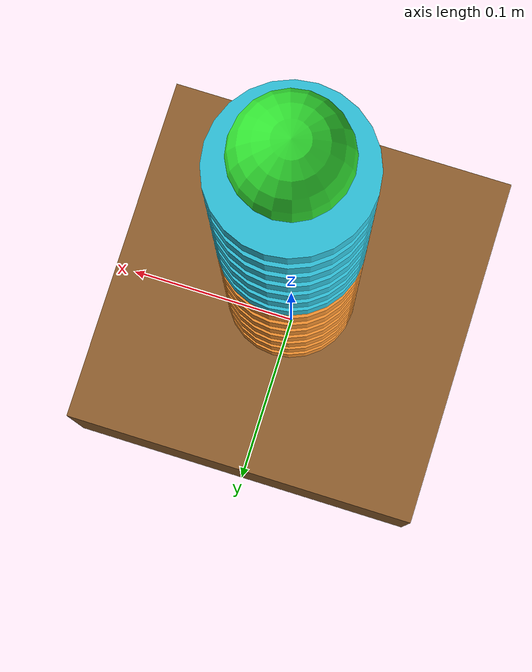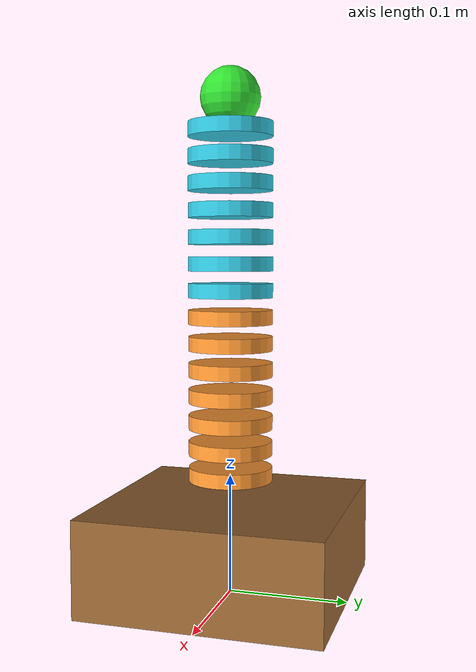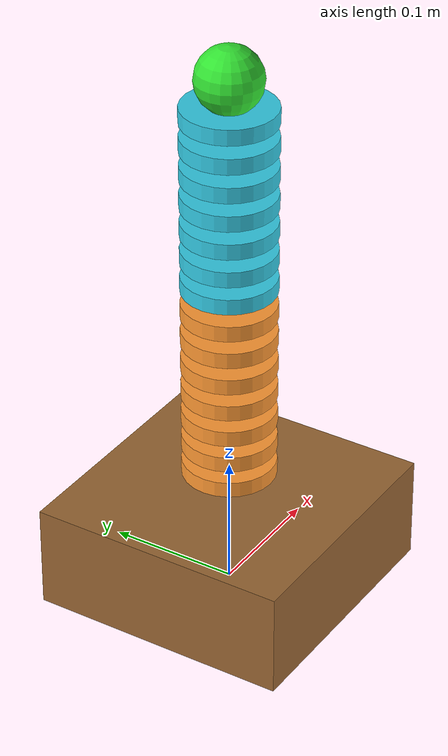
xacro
<?xml version="1.0"?>
<robot xmlns:xacro="http://www.ros.org/wiki/xacro" name="follower_serial_robot">

  <!-- Robot Dimensional Constants -->
  <xacro:property name="ground_offset" value="0.080"/>       <!-- 80mm - distance from ground to first joints -->
  <xacro:property name="H" value="0.022"/>                   <!-- 22mm - equal H distance everywhere (10% larger) -->
  <xacro:property name="revolute_limit" value="0.2094"/>     <!-- ±12° in radians -->
  <xacro:property name="disc_radius" value="0.0352"/>        <!-- 35.2mm radius = 70.4mm diameter (20% smaller) -->
  <xacro:property name="disc_height" value="0.012"/>         <!-- 12mm disc thickness -->

  <!-- Robot Segment Macro -->
  <xacro:macro name="robot_segment" params="segment_num parent_link is_actuated_x is_actuated_y mimic_segment disc_color">

    <!-- Revolute Joint X (Roll) -->
    <joint name="seg${segment_num}_joint_x" type="revolute">
      <parent link="${parent_link}"/>
      <child link="seg${segment_num}_x_link"/>
      <origin xyz="0 0 0" rpy="0 0 0"/>
      <axis xyz="1 0 0"/>
      <limit lower="-${revolute_limit}" upper="${revolute_limit}" effort="100" velocity="1.0"/>
      <xacro:if value="${is_actuated_x}">
        <dynamics damping="0.7" friction="0.0"/>
      </xacro:if>
      <xacro:unless value="${is_actuated_x}">
        <!-- Passive joint - follows control segment -->
        <mimic joint="seg${mimic_segment}_joint_x" multiplier="1.0" offset="0.0"/>
        <dynamics damping="0.1" friction="0.0"/>
      </xacro:unless>
    </joint>

    <link name="seg${segment_num}_x_link">
      <!-- No visual - invisible joint -->
      <inertial>
        <origin xyz="0 0 0" rpy="0 0 0"/>
        <mass value="0.01"/>
        <inertia ixx="0.00001" ixy="0" ixz="0" iyy="0.00001" iyz="0" izz="0.00001"/>
      </inertial>
    </link>

    <!-- Revolute Joint Y (Pitch) -->
    <joint name="seg${segment_num}_joint_y" type="revolute">
      <parent link="seg${segment_num}_x_link"/>
      <child link="seg${segment_num}_y_link"/>
      <origin xyz="0 0 0" rpy="0 0 0"/>
      <axis xyz="0 1 0"/>
      <limit lower="-${revolute_limit}" upper="${revolute_limit}" effort="100" velocity="1.0"/>
      <xacro:if value="${is_actuated_y}">
        <dynamics damping="0.7" friction="0.0"/>
      </xacro:if>
      <xacro:unless value="${is_actuated_y}">
        <!-- Passive joint - follows control segment -->
        <mimic joint="seg${mimic_segment}_joint_y" multiplier="1.0" offset="0.0"/>
        <dynamics damping="0.1" friction="0.0"/>
      </xacro:unless>
    </joint>

    <link name="seg${segment_num}_y_link">
      <!-- No visual - invisible joint -->
      <inertial>
        <origin xyz="0 0 0" rpy="0 0 0"/>
        <mass value="0.01"/>
        <inertia ixx="0.00001" ixy="0" ixz="0" iyy="0.00001" iyz="0" izz="0.00001"/>
      </inertial>
    </link>

    <!-- Fixed H distance joint -->
    <joint name="seg${segment_num}_fixed_h" type="fixed">
      <parent link="seg${segment_num}_y_link"/>
      <child link="seg${segment_num}_mid_link"/>
      <origin xyz="0 0 ${H}" rpy="0 0 0"/>
    </joint>

    <!-- Middle link with disc platform -->
    <link name="seg${segment_num}_mid_link">
      <visual>
        <!-- Disc platform only -->
        <origin xyz="0 0 0" rpy="0 0 0"/>
        <geometry>
          <cylinder radius="${disc_radius}" length="${disc_height}"/>
        </geometry>
        <material name="disc_${segment_num}">
          <color rgba="${disc_color}"/>
        </material>
      </visual>
      <collision>
        <origin xyz="0 0 0" rpy="0 0 0"/>
        <geometry>
          <cylinder radius="${disc_radius}" length="${disc_height}"/>
        </geometry>
      </collision>
      <inertial>
        <origin xyz="0 0 0" rpy="0 0 0"/>
        <mass value="0.5"/>
        <inertia ixx="0.002" ixy="0" ixz="0" iyy="0.002" iyz="0" izz="0.003"/>
      </inertial>
    </link>

  </xacro:macro>

  <!-- Base Link -->
  <link name="base_link">
    <visual>
      <origin xyz="0 0 ${ground_offset/2}" rpy="0 0 0"/>
      <geometry>
        <box size="0.2 0.2 ${ground_offset}"/>
      </geometry>
      <material name="brown">
        <color rgba="0.6 0.4 0.2 1.0"/>
      </material>
    </visual>
    <collision>
      <origin xyz="0 0 ${ground_offset/2}" rpy="0 0 0"/>
      <geometry>
        <box size="0.2 0.2 ${ground_offset}"/>
      </geometry>
    </collision>
    <inertial>
      <origin xyz="0 0 ${ground_offset/2}" rpy="0 0 0"/>
      <mass value="2.0"/>
      <inertia ixx="0.01" ixy="0" ixz="0" iyy="0.01" iyz="0" izz="0.01"/>
    </inertial>
  </link>

  <!-- Fixed joint from base to first segment mounting point -->
  <joint name="base_to_seg1" type="fixed">
    <parent link="base_link"/>
    <child link="seg1_mount"/>
    <origin xyz="0 0 ${ground_offset}" rpy="0 0 0"/>
  </joint>

  <link name="seg1_mount">
    <!-- No visual - invisible mounting point -->
    <inertial>
      <mass value="0.01"/>
      <inertia ixx="0.00001" ixy="0" ixz="0" iyy="0.00001" iyz="0" izz="0.00001"/>
    </inertial>
  </link>

  <!-- ===== BOTTOM HALF: 7 segments controlled by seg1 (ORANGE) ===== -->

  <!-- Segment 1: ACTUATED (Bottom Leader) -->
  <xacro:robot_segment
    segment_num="1"
    parent_link="seg1_mount"
    is_actuated_x="true"
    is_actuated_y="true"
    mimic_segment="1"
    disc_color="1.0 0.6 0.2 1.0"/>

  <!-- Segment 2: PASSIVE (Follows seg1) -->
  <xacro:robot_segment
    segment_num="2"
    parent_link="seg1_mid_link"
    is_actuated_x="false"
    is_actuated_y="false"
    mimic_segment="1"
    disc_color="1.0 0.6 0.2 1.0"/>

  <!-- Segment 3: PASSIVE (Follows seg1) -->
  <xacro:robot_segment
    segment_num="3"
    parent_link="seg2_mid_link"
    is_actuated_x="false"
    is_actuated_y="false"
    mimic_segment="1"
    disc_color="1.0 0.6 0.2 1.0"/>

  <!-- Segment 4: PASSIVE (Follows seg1) -->
  <xacro:robot_segment
    segment_num="4"
    parent_link="seg3_mid_link"
    is_actuated_x="false"
    is_actuated_y="false"
    mimic_segment="1"
    disc_color="1.0 0.6 0.2 1.0"/>

  <!-- Segment 5: PASSIVE (Follows seg1) -->
  <xacro:robot_segment
    segment_num="5"
    parent_link="seg4_mid_link"
    is_actuated_x="false"
    is_actuated_y="false"
    mimic_segment="1"
    disc_color="1.0 0.6 0.2 1.0"/>

  <!-- Segment 6: PASSIVE (Follows seg1) -->
  <xacro:robot_segment
    segment_num="6"
    parent_link="seg5_mid_link"
    is_actuated_x="false"
    is_actuated_y="false"
    mimic_segment="1"
    disc_color="1.0 0.6 0.2 1.0"/>

  <!-- Segment 7: PASSIVE (Follows seg1) -->
  <xacro:robot_segment
    segment_num="7"
    parent_link="seg6_mid_link"
    is_actuated_x="false"
    is_actuated_y="false"
    mimic_segment="1"
    disc_color="1.0 0.6 0.2 1.0"/>

  <!-- ===== TOP HALF: 7 segments controlled by seg8 (CYAN) ===== -->

  <!-- Segment 8: ACTUATED (Top Leader) -->
  <xacro:robot_segment
    segment_num="8"
    parent_link="seg7_mid_link"
    is_actuated_x="true"
    is_actuated_y="true"
    mimic_segment="8"
    disc_color="0.2 0.8 0.9 1.0"/>

  <!-- Segment 9: PASSIVE (Follows seg8) -->
  <xacro:robot_segment
    segment_num="9"
    parent_link="seg8_mid_link"
    is_actuated_x="false"
    is_actuated_y="false"
    mimic_segment="8"
    disc_color="0.2 0.8 0.9 1.0"/>

  <!-- Segment 10: PASSIVE (Follows seg8) -->
  <xacro:robot_segment
    segment_num="10"
    parent_link="seg9_mid_link"
    is_actuated_x="false"
    is_actuated_y="false"
    mimic_segment="8"
    disc_color="0.2 0.8 0.9 1.0"/>

  <!-- Segment 11: PASSIVE (Follows seg8) -->
  <xacro:robot_segment
    segment_num="11"
    parent_link="seg10_mid_link"
    is_actuated_x="false"
    is_actuated_y="false"
    mimic_segment="8"
    disc_color="0.2 0.8 0.9 1.0"/>

  <!-- Segment 12: PASSIVE (Follows seg8) -->
  <xacro:robot_segment
    segment_num="12"
    parent_link="seg11_mid_link"
    is_actuated_x="false"
    is_actuated_y="false"
    mimic_segment="8"
    disc_color="0.2 0.8 0.9 1.0"/>

  <!-- Segment 13: PASSIVE (Follows seg8) -->
  <xacro:robot_segment
    segment_num="13"
    parent_link="seg12_mid_link"
    is_actuated_x="false"
    is_actuated_y="false"
    mimic_segment="8"
    disc_color="0.2 0.8 0.9 1.0"/>

  <!-- Segment 14: PASSIVE (Follows seg8) -->
  <xacro:robot_segment
    segment_num="14"
    parent_link="seg13_mid_link"
    is_actuated_x="false"
    is_actuated_y="false"
    mimic_segment="8"
    disc_color="0.2 0.8 0.9 1.0"/>

  <!-- End Effector -->
  <joint name="ee_joint" type="fixed">
    <parent link="seg14_mid_link"/>
    <child link="end_effector"/>
    <origin xyz="0 0 ${disc_height/2}" rpy="0 0 0"/>
  </joint>

  <link name="end_effector">
    <visual>
      <origin xyz="0 0 0.02" rpy="0 0 0"/>
      <geometry>
        <sphere radius="0.025"/>
      </geometry>
      <material name="green">
        <color rgba="0.2 0.9 0.2 1.0"/>
      </material>
    </visual>
    <inertial>
      <mass value="0.01"/>
      <inertia ixx="0.00001" ixy="0" ixz="0" iyy="0.00001" iyz="0" izz="0.00001"/>
    </inertial>
  </link>

</robot>
